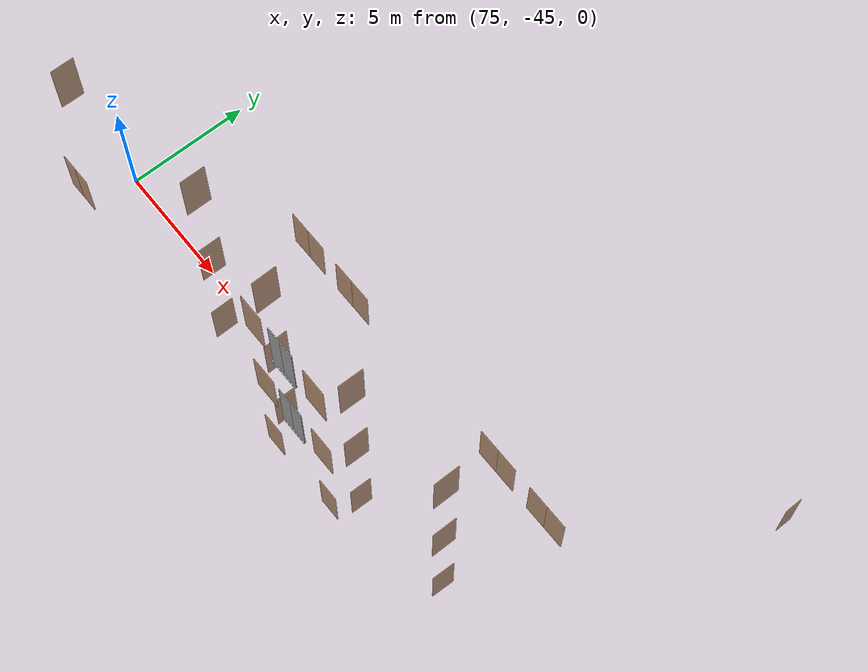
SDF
<sdf version="1.7">
 <world name="sim_world">
  <model name="p51">
   <pose>74.32173120796426 -46.93032058309386 0.0 0 0 0.003984648579057701</pose>
   <link name="right">
    <pose>0.36528096569168833 0 1.11 0 0 0</pose>
    <visual name="right_visual">
     <geometry><box><size>0.7205619313833767 0.03 2.2</size></box></geometry>
     <material>
      <ambient>0.5 0.25 0 0.6</ambient>
      <diffuse>0.5 0.25 0 0.6</diffuse>
      <pbr><metal><metalness>0.0</metalness></metal></pbr>
     </material>
    </visual>
    <collision name="right_collision">
     <geometry><box><size>0.7205619313833767 0.03 2.2</size></box></geometry>
     <surface><contact><collide_bitmask>0x02</collide_bitmask></contact></surface>
    </collision>
    <inertial>
     <mass>50.0</mass>
     <inertia><ixx>20.17041666666667</ixx><iyy>22.330039570662265</iyy><izz>2.167122903995592</izz></inertia>
    </inertial>
   </link>
   <joint name="right_joint" type="revolute">
    <parent>world</parent>
    <child>right</child>
    <axis><xyz>0 0 -1</xyz><limit><lower>0</lower><upper>1.57</upper></limit></axis>
    <pose>0.36528096569168833 0 0 0 0 0</pose>
   </joint>
   <link name="left">
    <pose>-0.36528096569168833 0 1.11 0 0 0</pose>
    <visual name="left_visual">
     <geometry><box><size>0.7205619313833767 0.03 2.2</size></box></geometry>
     <material>
      <ambient>0.5 0.25 0 0.6</ambient>
      <diffuse>0.5 0.25 0 0.6</diffuse>
      <pbr><metal><metalness>0.0</metalness></metal></pbr>
     </material>
    </visual>
    <collision name="left_collision">
     <geometry><box><size>0.7205619313833767 0.03 2.2</size></box></geometry>
     <surface><contact><collide_bitmask>0x02</collide_bitmask></contact></surface>
    </collision>
    <inertial>
     <mass>50.0</mass>
     <inertia><ixx>20.17041666666667</ixx><iyy>22.330039570662265</iyy><izz>2.167122903995592</izz></inertia>
    </inertial>
   </link>
   <joint name="left_joint" type="revolute">
    <parent>world</parent>
    <child>left</child>
    <axis><xyz>0 0 -1</xyz><limit><lower>-1.57</lower><upper>0</upper></limit></axis>
    <pose>-0.36528096569168833 0 0 0 0 0</pose>
   </joint>
   <plugin name="register_component" filename="libregister_component.so">
    <component name="Door">
     <v_max_door>0.5</v_max_door>
     <a_max_door>0.3</a_max_door>
     <a_nom_door>0.15</a_nom_door>
     <dx_min_door>0.01</dx_min_door>
     <f_max_door>500.0</f_max_door>
     <ros_interface>true</ros_interface>
     <door name="p51" type="DoubleSwingDoor" left_joint_name="left_joint" right_joint_name="right_joint"/>
    </component>
   </plugin>
  </model>
  <model name="p56">
   <pose>81.77791028413978 -41.72223045243107 0.0 0 0 0.0</pose>
   <link name="right">
    <pose>0.46025302953986724 0 1.11 0 0 0</pose>
    <visual name="right_visual">
     <geometry><box><size>0.9105060590797345 0.03 2.2</size></box></geometry>
     <material>
      <ambient>0.5 0.25 0 0.6</ambient>
      <diffuse>0.5 0.25 0 0.6</diffuse>
      <pbr><metal><metalness>0.0</metalness></metal></pbr>
     </material>
    </visual>
    <collision name="right_collision">
     <geometry><box><size>0.9105060590797345 0.03 2.2</size></box></geometry>
     <surface><contact><collide_bitmask>0x02</collide_bitmask></contact></surface>
    </collision>
    <inertial>
     <mass>50.0</mass>
     <inertia><ixx>20.17041666666667</ixx><iyy>23.620922015087125</iyy><izz>3.458005348420454</izz></inertia>
    </inertial>
   </link>
   <joint name="right_joint" type="revolute">
    <parent>world</parent>
    <child>right</child>
    <axis><xyz>0 0 -1</xyz><limit><lower>0</lower><upper>1.57</upper></limit></axis>
    <pose>0.46025302953986724 0 0 0 0 0</pose>
   </joint>
   <link name="left">
    <pose>-0.46025302953986724 0 1.11 0 0 0</pose>
    <visual name="left_visual">
     <geometry><box><size>0.9105060590797345 0.03 2.2</size></box></geometry>
     <material>
      <ambient>0.5 0.25 0 0.6</ambient>
      <diffuse>0.5 0.25 0 0.6</diffuse>
      <pbr><metal><metalness>0.0</metalness></metal></pbr>
     </material>
    </visual>
    <collision name="left_collision">
     <geometry><box><size>0.9105060590797345 0.03 2.2</size></box></geometry>
     <surface><contact><collide_bitmask>0x02</collide_bitmask></contact></surface>
    </collision>
    <inertial>
     <mass>50.0</mass>
     <inertia><ixx>20.17041666666667</ixx><iyy>23.620922015087125</iyy><izz>3.458005348420454</izz></inertia>
    </inertial>
   </link>
   <joint name="left_joint" type="revolute">
    <parent>world</parent>
    <child>left</child>
    <axis><xyz>0 0 -1</xyz><limit><lower>-1.57</lower><upper>0</upper></limit></axis>
    <pose>-0.46025302953986724 0 0 0 0 0</pose>
   </joint>
   <plugin name="register_component" filename="libregister_component.so">
    <component name="Door">
     <v_max_door>0.5</v_max_door>
     <a_max_door>0.3</a_max_door>
     <a_nom_door>0.15</a_nom_door>
     <dx_min_door>0.01</dx_min_door>
     <f_max_door>500.0</f_max_door>
     <ros_interface>true</ros_interface>
     <door name="p56" type="DoubleSwingDoor" left_joint_name="left_joint" right_joint_name="right_joint"/>
    </component>
   </plugin>
  </model>
  <model name="p57">
   <pose>84.3984993037244 -41.72223045243107 0.0 0 0 0.0</pose>
   <link name="right">
    <pose>0.4707749400017782 0 1.11 0 0 0</pose>
    <visual name="right_visual">
     <geometry><box><size>0.9315498800035564 0.03 2.2</size></box></geometry>
     <material>
      <ambient>0.5 0.25 0 0.6</ambient>
      <diffuse>0.5 0.25 0 0.6</diffuse>
      <pbr><metal><metalness>0.0</metalness></metal></pbr>
     </material>
    </visual>
    <collision name="right_collision">
     <geometry><box><size>0.9315498800035564 0.03 2.2</size></box></geometry>
     <surface><contact><collide_bitmask>0x02</collide_bitmask></contact></surface>
    </collision>
    <inertial>
     <mass>50.0</mass>
     <inertia><ixx>20.17041666666667</ixx><iyy>23.782438245561003</iyy><izz>3.619521578894335</izz></inertia>
    </inertial>
   </link>
   <joint name="right_joint" type="revolute">
    <parent>world</parent>
    <child>right</child>
    <axis><xyz>0 0 -1</xyz><limit><lower>0</lower><upper>1.57</upper></limit></axis>
    <pose>0.4707749400017782 0 0 0 0 0</pose>
   </joint>
   <link name="left">
    <pose>-0.4707749400017782 0 1.11 0 0 0</pose>
    <visual name="left_visual">
     <geometry><box><size>0.9315498800035564 0.03 2.2</size></box></geometry>
     <material>
      <ambient>0.5 0.25 0 0.6</ambient>
      <diffuse>0.5 0.25 0 0.6</diffuse>
      <pbr><metal><metalness>0.0</metalness></metal></pbr>
     </material>
    </visual>
    <collision name="left_collision">
     <geometry><box><size>0.9315498800035564 0.03 2.2</size></box></geometry>
     <surface><contact><collide_bitmask>0x02</collide_bitmask></contact></surface>
    </collision>
    <inertial>
     <mass>50.0</mass>
     <inertia><ixx>20.17041666666667</ixx><iyy>23.782438245561003</iyy><izz>3.619521578894335</izz></inertia>
    </inertial>
   </link>
   <joint name="left_joint" type="revolute">
    <parent>world</parent>
    <child>left</child>
    <axis><xyz>0 0 -1</xyz><limit><lower>-1.57</lower><upper>0</upper></limit></axis>
    <pose>-0.4707749400017782 0 0 0 0 0</pose>
   </joint>
   <plugin name="register_component" filename="libregister_component.so">
    <component name="Door">
     <v_max_door>0.5</v_max_door>
     <a_max_door>0.3</a_max_door>
     <a_nom_door>0.15</a_nom_door>
     <dx_min_door>0.01</dx_min_door>
     <f_max_door>500.0</f_max_door>
     <ros_interface>true</ros_interface>
     <door name="p57" type="DoubleSwingDoor" left_joint_name="left_joint" right_joint_name="right_joint"/>
    </component>
   </plugin>
  </model>
  <model name="p84">
   <pose>82.21224185950052 -45.95616055820571 0.0 0 0 1.5800664596565286</pose>
   <link name="right">
    <pose>0 0 1.11 0 0 0</pose>
    <visual name="right_visual">
     <geometry><box><size>0.9320792330779536 0.03 2.2</size></box></geometry>
     <material>
      <ambient>0.5 0.25 0 0.6</ambient>
      <diffuse>0.5 0.25 0 0.6</diffuse>
      <pbr><metal><metalness>0.0</metalness></metal></pbr>
     </material>
    </visual>
    <collision name="right_collision">
     <geometry><box><size>0.9320792330779536 0.03 2.2</size></box></geometry>
     <surface><contact><collide_bitmask>0x02</collide_bitmask></contact></surface>
    </collision>
    <inertial>
     <mass>50.0</mass>
     <inertia><ixx>20.17041666666667</ixx><iyy>23.786548736396615</iyy><izz>3.623632069729943</izz></inertia>
    </inertial>
   </link>
   <joint name="right_joint" type="revolute">
    <parent>world</parent>
    <child>right</child>
    <axis><xyz>0 0 -1</xyz><limit><lower>0</lower><upper>1.57</upper></limit></axis>
    <pose>0.4710396165389768 0 0 0 0 0</pose>
   </joint>
   <plugin name="register_component" filename="libregister_component.so">
    <component name="Door">
     <v_max_door>0.5</v_max_door>
     <a_max_door>0.3</a_max_door>
     <a_nom_door>0.15</a_nom_door>
     <dx_min_door>0.01</dx_min_door>
     <f_max_door>500.0</f_max_door>
     <ros_interface>true</ros_interface>
     <door name="p84" type="SwingDoor" left_joint_name="empty_joint" right_joint_name="right_joint"/>
    </component>
   </plugin>
  </model>
  <model name="p88">
   <pose>86.38937364818827 -46.28528413972923 0.0 0 0 1.5707963267948966</pose>
   <link name="right">
    <pose>0 0 1.11 0 0 0</pose>
    <visual name="right_visual">
     <geometry><box><size>0.8723960771532668 0.03 2.2</size></box></geometry>
     <material>
      <ambient>0.5 0.25 0 0.6</ambient>
      <diffuse>0.5 0.25 0 0.6</diffuse>
      <pbr><metal><metalness>0.0</metalness></metal></pbr>
     </material>
    </visual>
    <collision name="right_collision">
     <geometry><box><size>0.8723960771532668 0.03 2.2</size></box></geometry>
     <surface><contact><collide_bitmask>0x02</collide_bitmask></contact></surface>
    </collision>
    <inertial>
     <mass>50.0</mass>
     <inertia><ixx>20.17041666666667</ixx><iyy>23.33781214763504</iyy><izz>3.17489548096837</izz></inertia>
    </inertial>
   </link>
   <joint name="right_joint" type="revolute">
    <parent>world</parent>
    <child>right</child>
    <axis><xyz>0 0 -1</xyz><limit><lower>0</lower><upper>1.57</upper></limit></axis>
    <pose>0.4411980385766334 0 0 0 0 0</pose>
   </joint>
   <plugin name="register_component" filename="libregister_component.so">
    <component name="Door">
     <v_max_door>0.5</v_max_door>
     <a_max_door>0.3</a_max_door>
     <a_nom_door>0.15</a_nom_door>
     <dx_min_door>0.01</dx_min_door>
     <f_max_door>500.0</f_max_door>
     <ros_interface>true</ros_interface>
     <door name="p88" type="SwingDoor" left_joint_name="empty_joint" right_joint_name="right_joint"/>
    </component>
   </plugin>
  </model>
  <model name="p89">
   <pose>90.73502266599515 -46.259451571805315 0.0 0 0 1.5528749148952739</pose>
   <link name="right">
    <pose>0 0 1.11 0 0 0</pose>
    <visual name="right_visual">
     <geometry><box><size>0.8654479814166963 0.03 2.2</size></box></geometry>
     <material>
      <ambient>0.5 0.25 0 0.6</ambient>
      <diffuse>0.5 0.25 0 0.6</diffuse>
      <pbr><metal><metalness>0.0</metalness></metal></pbr>
     </material>
    </visual>
    <collision name="right_collision">
     <geometry><box><size>0.8654479814166963 0.03 2.2</size></box></geometry>
     <surface><contact><collide_bitmask>0x02</collide_bitmask></contact></surface>
    </collision>
    <inertial>
     <mass>50.0</mass>
     <inertia><ixx>20.17041666666667</ixx><iyy>23.287500868909316</iyy><izz>3.1245842022426435</izz></inertia>
    </inertial>
   </link>
   <joint name="right_joint" type="revolute">
    <parent>world</parent>
    <child>right</child>
    <axis><xyz>0 0 1</xyz><limit><lower>0</lower><upper>1.57</upper></limit></axis>
    <pose>0.43772399070834817 0 0 0 0 0</pose>
   </joint>
   <plugin name="register_component" filename="libregister_component.so">
    <component name="Door">
     <v_max_door>0.5</v_max_door>
     <a_max_door>0.3</a_max_door>
     <a_nom_door>0.15</a_nom_door>
     <dx_min_door>0.01</dx_min_door>
     <f_max_door>500.0</f_max_door>
     <ros_interface>true</ros_interface>
     <door name="p89" type="SwingDoor" left_joint_name="empty_joint" right_joint_name="right_joint"/>
    </component>
   </plugin>
  </model>
  <model name="p90">
   <pose>94.91517658736043 -45.93215015851385 0.0 0 0 1.5454165304402319</pose>
   <link name="right">
    <pose>0 0 1.11 0 0 0</pose>
    <visual name="right_visual">
     <geometry><box><size>0.9103135714260935 0.03 2.2</size></box></geometry>
     <material>
      <ambient>0.5 0.25 0 0.6</ambient>
      <diffuse>0.5 0.25 0 0.6</diffuse>
      <pbr><metal><metalness>0.0</metalness></metal></pbr>
     </material>
    </visual>
    <collision name="right_collision">
     <geometry><box><size>0.9103135714260935 0.03 2.2</size></box></geometry>
     <surface><contact><collide_bitmask>0x02</collide_bitmask></contact></surface>
    </collision>
    <inertial>
     <mass>50.0</mass>
     <inertia><ixx>20.17041666666667</ixx><iyy>23.61946165967721</iyy><izz>3.4565449930105396</izz></inertia>
    </inertial>
   </link>
   <joint name="right_joint" type="revolute">
    <parent>world</parent>
    <child>right</child>
    <axis><xyz>0 0 1</xyz><limit><lower>0</lower><upper>1.57</upper></limit></axis>
    <pose>0.46015678571304675 0 0 0 0 0</pose>
   </joint>
   <plugin name="register_component" filename="libregister_component.so">
    <component name="Door">
     <v_max_door>0.5</v_max_door>
     <a_max_door>0.3</a_max_door>
     <a_nom_door>0.15</a_nom_door>
     <dx_min_door>0.01</dx_min_door>
     <f_max_door>500.0</f_max_door>
     <ros_interface>true</ros_interface>
     <door name="p90" type="SwingDoor" left_joint_name="empty_joint" right_joint_name="right_joint"/>
    </component>
   </plugin>
  </model>
  <model name="p96">
   <pose>92.74594086101159 -41.70956416106193 0.0 0 0 0.0</pose>
   <link name="right">
    <pose>0.47248600041480415 0 1.11 0 0 0</pose>
    <visual name="right_visual">
     <geometry><box><size>0.9349720008296083 0.03 2.2</size></box></geometry>
     <material>
      <ambient>0.5 0.25 0 0.6</ambient>
      <diffuse>0.5 0.25 0 0.6</diffuse>
      <pbr><metal><metalness>0.0</metalness></metal></pbr>
     </material>
    </visual>
    <collision name="right_collision">
     <geometry><box><size>0.9349720008296083 0.03 2.2</size></box></geometry>
     <surface><contact><collide_bitmask>0x02</collide_bitmask></contact></surface>
    </collision>
    <inertial>
     <mass>50.0</mass>
     <inertia><ixx>20.17041666666667</ixx><iyy>23.80905267639718</iyy><izz>3.646136009730505</izz></inertia>
    </inertial>
   </link>
   <joint name="right_joint" type="revolute">
    <parent>world</parent>
    <child>right</child>
    <axis><xyz>0 0 -1</xyz><limit><lower>0</lower><upper>1.57</upper></limit></axis>
    <pose>0.47248600041480415 0 0 0 0 0</pose>
   </joint>
   <link name="left">
    <pose>-0.47248600041480415 0 1.11 0 0 0</pose>
    <visual name="left_visual">
     <geometry><box><size>0.9349720008296083 0.03 2.2</size></box></geometry>
     <material>
      <ambient>0.5 0.25 0 0.6</ambient>
      <diffuse>0.5 0.25 0 0.6</diffuse>
      <pbr><metal><metalness>0.0</metalness></metal></pbr>
     </material>
    </visual>
    <collision name="left_collision">
     <geometry><box><size>0.9349720008296083 0.03 2.2</size></box></geometry>
     <surface><contact><collide_bitmask>0x02</collide_bitmask></contact></surface>
    </collision>
    <inertial>
     <mass>50.0</mass>
     <inertia><ixx>20.17041666666667</ixx><iyy>23.80905267639718</iyy><izz>3.646136009730505</izz></inertia>
    </inertial>
   </link>
   <joint name="left_joint" type="revolute">
    <parent>world</parent>
    <child>left</child>
    <axis><xyz>0 0 -1</xyz><limit><lower>-1.57</lower><upper>0</upper></limit></axis>
    <pose>-0.47248600041480415 0 0 0 0 0</pose>
   </joint>
   <plugin name="register_component" filename="libregister_component.so">
    <component name="Door">
     <v_max_door>0.5</v_max_door>
     <a_max_door>0.3</a_max_door>
     <a_nom_door>0.15</a_nom_door>
     <dx_min_door>0.01</dx_min_door>
     <f_max_door>500.0</f_max_door>
     <ros_interface>true</ros_interface>
     <door name="p96" type="DoubleSwingDoor" left_joint_name="left_joint" right_joint_name="right_joint"/>
    </component>
   </plugin>
  </model>
  <model name="p97">
   <pose>95.39737341115824 -41.70956416106193 0.0 0 0 0.0</pose>
   <link name="right">
    <pose>0.4747525999229687 0 1.11 0 0 0</pose>
    <visual name="right_visual">
     <geometry><box><size>0.9395051998459374 0.03 2.2</size></box></geometry>
     <material>
      <ambient>0.5 0.25 0 0.6</ambient>
      <diffuse>0.5 0.25 0 0.6</diffuse>
      <pbr><metal><metalness>0.0</metalness></metal></pbr>
     </material>
    </visual>
    <collision name="right_collision">
     <geometry><box><size>0.9395051998459374 0.03 2.2</size></box></geometry>
     <surface><contact><collide_bitmask>0x02</collide_bitmask></contact></surface>
    </collision>
    <inertial>
     <mass>50.0</mass>
     <inertia><ixx>20.17041666666667</ixx><iyy>23.844458418906484</iyy><izz>3.6815417522398115</izz></inertia>
    </inertial>
   </link>
   <joint name="right_joint" type="revolute">
    <parent>world</parent>
    <child>right</child>
    <axis><xyz>0 0 -1</xyz><limit><lower>0</lower><upper>1.57</upper></limit></axis>
    <pose>0.4747525999229687 0 0 0 0 0</pose>
   </joint>
   <link name="left">
    <pose>-0.4747525999229687 0 1.11 0 0 0</pose>
    <visual name="left_visual">
     <geometry><box><size>0.9395051998459374 0.03 2.2</size></box></geometry>
     <material>
      <ambient>0.5 0.25 0 0.6</ambient>
      <diffuse>0.5 0.25 0 0.6</diffuse>
      <pbr><metal><metalness>0.0</metalness></metal></pbr>
     </material>
    </visual>
    <collision name="left_collision">
     <geometry><box><size>0.9395051998459374 0.03 2.2</size></box></geometry>
     <surface><contact><collide_bitmask>0x02</collide_bitmask></contact></surface>
    </collision>
    <inertial>
     <mass>50.0</mass>
     <inertia><ixx>20.17041666666667</ixx><iyy>23.844458418906484</iyy><izz>3.6815417522398115</izz></inertia>
    </inertial>
   </link>
   <joint name="left_joint" type="revolute">
    <parent>world</parent>
    <child>left</child>
    <axis><xyz>0 0 -1</xyz><limit><lower>-1.57</lower><upper>0</upper></limit></axis>
    <pose>-0.4747525999229687 0 0 0 0 0</pose>
   </joint>
   <plugin name="register_component" filename="libregister_component.so">
    <component name="Door">
     <v_max_door>0.5</v_max_door>
     <a_max_door>0.3</a_max_door>
     <a_nom_door>0.15</a_nom_door>
     <dx_min_door>0.01</dx_min_door>
     <f_max_door>500.0</f_max_door>
     <ros_interface>true</ros_interface>
     <door name="p97" type="DoubleSwingDoor" left_joint_name="left_joint" right_joint_name="right_joint"/>
    </component>
   </plugin>
  </model>
  <model name="p134">
   <pose>100.66537287784072 -34.99961852982136 0.0 0 0 1.5758287047137844</pose>
   <link name="right">
    <pose>0 0 1.11 0 0 0</pose>
    <visual name="right_visual">
     <geometry><box><size>0.6788549789555727 0.03 2.2</size></box></geometry>
     <material>
      <ambient>0.5 0.25 0 0.6</ambient>
      <diffuse>0.5 0.25 0 0.6</diffuse>
      <pbr><metal><metalness>0.0</metalness></metal></pbr>
     </material>
    </visual>
    <collision name="right_collision">
     <geometry><box><size>0.6788549789555727 0.03 2.2</size></box></geometry>
     <surface><contact><collide_bitmask>0x02</collide_bitmask></contact></surface>
    </collision>
    <inertial>
     <mass>50.0</mass>
     <inertia><ixx>20.17041666666667</ixx><iyy>22.086850343553216</iyy><izz>1.923933676886546</izz></inertia>
    </inertial>
   </link>
   <joint name="right_joint" type="revolute">
    <parent>world</parent>
    <child>right</child>
    <axis><xyz>0 0 -1</xyz><limit><lower>0</lower><upper>1.57</upper></limit></axis>
    <pose>0.34442748947778634 0 0 0 0 0</pose>
   </joint>
   <plugin name="register_component" filename="libregister_component.so">
    <component name="Door">
     <v_max_door>0.5</v_max_door>
     <a_max_door>0.3</a_max_door>
     <a_nom_door>0.15</a_nom_door>
     <dx_min_door>0.01</dx_min_door>
     <f_max_door>500.0</f_max_door>
     <ros_interface>true</ros_interface>
     <door name="p134" type="SwingDoor" left_joint_name="empty_joint" right_joint_name="right_joint"/>
    </component>
   </plugin>
  </model>
  <model name="door1">
   <pose>87.02282154602833 -47.255966489881814 0.0 0 0 -3.135361404890711</pose>
   <link name="right">
    <pose>0 0 1.11 0 0 0</pose>
    <visual name="right_visual">
     <geometry><box><size>0.9421680514886853 0.03 2.2</size></box></geometry>
     <material>
      <ambient>0.5 0.25 0 0.6</ambient>
      <diffuse>0.5 0.25 0 0.6</diffuse>
      <pbr><metal><metalness>0.0</metalness></metal></pbr>
     </material>
    </visual>
    <collision name="right_collision">
     <geometry><box><size>0.9421680514886853 0.03 2.2</size></box></geometry>
     <surface><contact><collide_bitmask>0x02</collide_bitmask></contact></surface>
    </collision>
    <inertial>
     <mass>50.0</mass>
     <inertia><ixx>20.17041666666667</ixx><iyy>23.865335988524947</iyy><izz>3.7024193218582755</izz></inertia>
    </inertial>
   </link>
   <joint name="right_joint" type="revolute">
    <parent>world</parent>
    <child>right</child>
    <axis><xyz>0 0 -1</xyz><limit><lower>0</lower><upper>1.57</upper></limit></axis>
    <pose>0.47608402574434266 0 0 0 0 0</pose>
   </joint>
   <plugin name="register_component" filename="libregister_component.so">
    <component name="Door">
     <v_max_door>0.5</v_max_door>
     <a_max_door>0.3</a_max_door>
     <a_nom_door>0.15</a_nom_door>
     <dx_min_door>0.01</dx_min_door>
     <f_max_door>500.0</f_max_door>
     <ros_interface>true</ros_interface>
     <door name="door1" type="SwingDoor" left_joint_name="empty_joint" right_joint_name="right_joint"/>
    </component>
   </plugin>
  </model>
  <model name="door2">
   <pose>90.14611789280323 -47.2474667417262 0.0 0 0 -0.002219270268049389</pose>
   <link name="right">
    <pose>0 0 1.11 0 0 0</pose>
    <visual name="right_visual">
     <geometry><box><size>0.9111971960788078 0.03 2.2</size></box></geometry>
     <material>
      <ambient>0.5 0.25 0 0.6</ambient>
      <diffuse>0.5 0.25 0 0.6</diffuse>
      <pbr><metal><metalness>0.0</metalness></metal></pbr>
     </material>
    </visual>
    <collision name="right_collision">
     <geometry><box><size>0.9111971960788078 0.03 2.2</size></box></geometry>
     <surface><contact><collide_bitmask>0x02</collide_bitmask></contact></surface>
    </collision>
    <inertial>
     <mass>50.0</mass>
     <inertia><ixx>20.17041666666667</ixx><iyy>23.62616804225784</iyy><izz>3.4632513755911725</izz></inertia>
    </inertial>
   </link>
   <joint name="right_joint" type="revolute">
    <parent>world</parent>
    <child>right</child>
    <axis><xyz>0 0 1</xyz><limit><lower>0</lower><upper>1.57</upper></limit></axis>
    <pose>0.4605985980394039 0 0 0 0 0</pose>
   </joint>
   <plugin name="register_component" filename="libregister_component.so">
    <component name="Door">
     <v_max_door>0.5</v_max_door>
     <a_max_door>0.3</a_max_door>
     <a_nom_door>0.15</a_nom_door>
     <dx_min_door>0.01</dx_min_door>
     <f_max_door>500.0</f_max_door>
     <ros_interface>true</ros_interface>
     <door name="door2" type="SwingDoor" left_joint_name="empty_joint" right_joint_name="right_joint"/>
    </component>
   </plugin>
  </model>
  <model name="puerta12">
   <pose>82.21872198714777 -45.93574734332783 5.0 0 0 1.5692167312490883</pose>
   <link name="right">
    <pose>0 0 1.11 0 0 0</pose>
    <visual name="right_visual">
     <geometry><box><size>0.9391861105429343 0.03 2.2</size></box></geometry>
     <material>
      <ambient>0.5 0.25 0 0.6</ambient>
      <diffuse>0.5 0.25 0 0.6</diffuse>
      <pbr><metal><metalness>0.0</metalness></metal></pbr>
     </material>
    </visual>
    <collision name="right_collision">
     <geometry><box><size>0.9391861105429343 0.03 2.2</size></box></geometry>
     <surface><contact><collide_bitmask>0x02</collide_bitmask></contact></surface>
    </collision>
    <inertial>
     <mass>50.0</mass>
     <inertia><ixx>20.17041666666667</ixx><iyy>23.841960625986527</iyy><izz>3.679043959319854</izz></inertia>
    </inertial>
   </link>
   <joint name="right_joint" type="revolute">
    <parent>world</parent>
    <child>right</child>
    <axis><xyz>0 0 -1</xyz><limit><lower>0</lower><upper>1.57</upper></limit></axis>
    <pose>0.47459305527146717 0 0 0 0 0</pose>
   </joint>
   <plugin name="register_component" filename="libregister_component.so">
    <component name="Door">
     <v_max_door>0.5</v_max_door>
     <a_max_door>0.3</a_max_door>
     <a_nom_door>0.15</a_nom_door>
     <dx_min_door>0.01</dx_min_door>
     <f_max_door>500.0</f_max_door>
     <ros_interface>true</ros_interface>
     <door name="puerta12" type="SwingDoor" left_joint_name="empty_joint" right_joint_name="right_joint"/>
    </component>
   </plugin>
  </model>
  <model name="puerta16">
   <pose>86.38997093504412 -46.263342028713105 5.0 0 0 1.590242900649069</pose>
   <link name="right">
    <pose>0 0 1.11 0 0 0</pose>
    <visual name="right_visual">
     <geometry><box><size>0.9415397783270939 0.03 2.2</size></box></geometry>
     <material>
      <ambient>0.5 0.25 0 0.6</ambient>
      <diffuse>0.5 0.25 0 0.6</diffuse>
      <pbr><metal><metalness>0.0</metalness></metal></pbr>
     </material>
    </visual>
    <collision name="right_collision">
     <geometry><box><size>0.9415397783270939 0.03 2.2</size></box></geometry>
     <surface><contact><collide_bitmask>0x02</collide_bitmask></contact></surface>
    </collision>
    <inertial>
     <mass>50.0</mass>
     <inertia><ixx>20.17041666666667</ixx><iyy>23.860404809050976</iyy><izz>3.6974881423843047</izz></inertia>
    </inertial>
   </link>
   <joint name="right_joint" type="revolute">
    <parent>world</parent>
    <child>right</child>
    <axis><xyz>0 0 -1</xyz><limit><lower>0</lower><upper>1.57</upper></limit></axis>
    <pose>0.47576988916354696 0 0 0 0 0</pose>
   </joint>
   <plugin name="register_component" filename="libregister_component.so">
    <component name="Door">
     <v_max_door>0.5</v_max_door>
     <a_max_door>0.3</a_max_door>
     <a_nom_door>0.15</a_nom_door>
     <dx_min_door>0.01</dx_min_door>
     <f_max_door>500.0</f_max_door>
     <ros_interface>true</ros_interface>
     <door name="puerta16" type="SwingDoor" left_joint_name="empty_joint" right_joint_name="right_joint"/>
    </component>
   </plugin>
  </model>
  <model name="puerta58">
   <pose>90.72171994269249 -46.26766840976967 5.0 0 0 1.5565709852327387</pose>
   <link name="right">
    <pose>0 0 1.11 0 0 0</pose>
    <visual name="right_visual">
     <geometry><box><size>0.9390827698172256 0.03 2.2</size></box></geometry>
     <material>
      <ambient>0.5 0.25 0 0.6</ambient>
      <diffuse>0.5 0.25 0 0.6</diffuse>
      <pbr><metal><metalness>0.0</metalness></metal></pbr>
     </material>
    </visual>
    <collision name="right_collision">
     <geometry><box><size>0.9390827698172256 0.03 2.2</size></box></geometry>
     <surface><contact><collide_bitmask>0x02</collide_bitmask></contact></surface>
    </collision>
    <inertial>
     <mass>50.0</mass>
     <inertia><ixx>20.17041666666667</ixx><iyy>23.841151869031638</iyy><izz>3.6782352023649683</izz></inertia>
    </inertial>
   </link>
   <joint name="right_joint" type="revolute">
    <parent>world</parent>
    <child>right</child>
    <axis><xyz>0 0 1</xyz><limit><lower>0</lower><upper>1.57</upper></limit></axis>
    <pose>0.4745413849086128 0 0 0 0 0</pose>
   </joint>
   <plugin name="register_component" filename="libregister_component.so">
    <component name="Door">
     <v_max_door>0.5</v_max_door>
     <a_max_door>0.3</a_max_door>
     <a_nom_door>0.15</a_nom_door>
     <dx_min_door>0.01</dx_min_door>
     <f_max_door>500.0</f_max_door>
     <ros_interface>true</ros_interface>
     <door name="puerta58" type="SwingDoor" left_joint_name="empty_joint" right_joint_name="right_joint"/>
    </component>
   </plugin>
  </model>
  <model name="puerta59">
   <pose>94.90597278616218 -45.958730188511424 5.0 0 0 1.56815506446211</pose>
   <link name="right">
    <pose>0 0 1.11 0 0 0</pose>
    <visual name="right_visual">
     <geometry><box><size>0.9523675508479919 0.03 2.2</size></box></geometry>
     <material>
      <ambient>0.5 0.25 0 0.6</ambient>
      <diffuse>0.5 0.25 0 0.6</diffuse>
      <pbr><metal><metalness>0.0</metalness></metal></pbr>
     </material>
    </visual>
    <collision name="right_collision">
     <geometry><box><size>0.9523675508479919 0.03 2.2</size></box></geometry>
     <surface><contact><collide_bitmask>0x02</collide_bitmask></contact></surface>
    </collision>
    <inertial>
     <mass>50.0</mass>
     <inertia><ixx>20.17041666666667</ixx><iyy>23.945849799617516</iyy><izz>3.7829331329508435</izz></inertia>
    </inertial>
   </link>
   <joint name="right_joint" type="revolute">
    <parent>world</parent>
    <child>right</child>
    <axis><xyz>0 0 1</xyz><limit><lower>0</lower><upper>1.57</upper></limit></axis>
    <pose>0.48118377542399593 0 0 0 0 0</pose>
   </joint>
   <plugin name="register_component" filename="libregister_component.so">
    <component name="Door">
     <v_max_door>0.5</v_max_door>
     <a_max_door>0.3</a_max_door>
     <a_nom_door>0.15</a_nom_door>
     <dx_min_door>0.01</dx_min_door>
     <f_max_door>500.0</f_max_door>
     <ros_interface>true</ros_interface>
     <door name="puerta59" type="SwingDoor" left_joint_name="empty_joint" right_joint_name="right_joint"/>
    </component>
   </plugin>
  </model>
  <model name="puerta77">
   <pose>87.05248618054199 -47.23282738127189 5.0 0 0 -3.137733583077164</pose>
   <link name="right">
    <pose>0 0 1.11 0 0 0</pose>
    <visual name="right_visual">
     <geometry><box><size>1.087429405224159 0.03 2.2</size></box></geometry>
     <material>
      <ambient>0.5 0.25 0 0.6</ambient>
      <diffuse>0.5 0.25 0 0.6</diffuse>
      <pbr><metal><metalness>0.0</metalness></metal></pbr>
     </material>
    </visual>
    <collision name="right_collision">
     <geometry><box><size>1.087429405224159 0.03 2.2</size></box></geometry>
     <surface><contact><collide_bitmask>0x02</collide_bitmask></contact></surface>
    </collision>
    <inertial>
     <mass>50.0</mass>
     <inertia><ixx>20.17041666666667</ixx><iyy>25.093761297275705</iyy><izz>4.930844630609035</izz></inertia>
    </inertial>
   </link>
   <joint name="right_joint" type="revolute">
    <parent>world</parent>
    <child>right</child>
    <axis><xyz>0 0 -1</xyz><limit><lower>0</lower><upper>1.57</upper></limit></axis>
    <pose>0.5487147026120796 0 0 0 0 0</pose>
   </joint>
   <plugin name="register_component" filename="libregister_component.so">
    <component name="Door">
     <v_max_door>0.5</v_max_door>
     <a_max_door>0.3</a_max_door>
     <a_nom_door>0.15</a_nom_door>
     <dx_min_door>0.01</dx_min_door>
     <f_max_door>500.0</f_max_door>
     <ros_interface>true</ros_interface>
     <door name="puerta77" type="SwingDoor" left_joint_name="empty_joint" right_joint_name="right_joint"/>
    </component>
   </plugin>
  </model>
  <model name="puerta78">
   <pose>90.1322083891242 -47.23438954188897 5.0 0 0 0.00015305860082299492</pose>
   <link name="right">
    <pose>0 0 1.11 0 0 0</pose>
    <visual name="right_visual">
     <geometry><box><size>1.016725844981074 0.03 2.2</size></box></geometry>
     <material>
      <ambient>0.5 0.25 0 0.6</ambient>
      <diffuse>0.5 0.25 0 0.6</diffuse>
      <pbr><metal><metalness>0.0</metalness></metal></pbr>
     </material>
    </visual>
    <collision name="right_collision">
     <geometry><box><size>1.016725844981074 0.03 2.2</size></box></geometry>
     <surface><contact><collide_bitmask>0x02</collide_bitmask></contact></surface>
    </collision>
    <inertial>
     <mass>50.0</mass>
     <inertia><ixx>20.17041666666667</ixx><iyy>24.473881016052</iyy><izz>4.31096434938533</izz></inertia>
    </inertial>
   </link>
   <joint name="right_joint" type="revolute">
    <parent>world</parent>
    <child>right</child>
    <axis><xyz>0 0 1</xyz><limit><lower>0</lower><upper>1.57</upper></limit></axis>
    <pose>0.513362922490537 0 0 0 0 0</pose>
   </joint>
   <plugin name="register_component" filename="libregister_component.so">
    <component name="Door">
     <v_max_door>0.5</v_max_door>
     <a_max_door>0.3</a_max_door>
     <a_nom_door>0.15</a_nom_door>
     <dx_min_door>0.01</dx_min_door>
     <f_max_door>500.0</f_max_door>
     <ros_interface>true</ros_interface>
     <door name="puerta78" type="SwingDoor" left_joint_name="empty_joint" right_joint_name="right_joint"/>
    </component>
   </plugin>
  </model>
  <model name="puerta103">
   <pose>82.21919756413095 -45.93582382147031 10.0 0 0 1.569218441725961</pose>
   <link name="right">
    <pose>0 0 1.11 0 0 0</pose>
    <visual name="right_visual">
     <geometry><box><size>0.9391972042563247 0.03 2.2</size></box></geometry>
     <material>
      <ambient>0.5 0.25 0 0.6</ambient>
      <diffuse>0.5 0.25 0 0.6</diffuse>
      <pbr><metal><metalness>0.0</metalness></metal></pbr>
     </material>
    </visual>
    <collision name="right_collision">
     <geometry><box><size>0.9391972042563247 0.03 2.2</size></box></geometry>
     <surface><contact><collide_bitmask>0x02</collide_bitmask></contact></surface>
    </collision>
    <inertial>
     <mass>50.0</mass>
     <inertia><ixx>20.17041666666667</ixx><iyy>23.842047452012075</iyy><izz>3.6791307853454023</izz></inertia>
    </inertial>
   </link>
   <joint name="right_joint" type="revolute">
    <parent>world</parent>
    <child>right</child>
    <axis><xyz>0 0 -1</xyz><limit><lower>0</lower><upper>1.57</upper></limit></axis>
    <pose>0.47459860212816235 0 0 0 0 0</pose>
   </joint>
   <plugin name="register_component" filename="libregister_component.so">
    <component name="Door">
     <v_max_door>0.5</v_max_door>
     <a_max_door>0.3</a_max_door>
     <a_nom_door>0.15</a_nom_door>
     <dx_min_door>0.01</dx_min_door>
     <f_max_door>500.0</f_max_door>
     <ros_interface>true</ros_interface>
     <door name="puerta103" type="SwingDoor" left_joint_name="empty_joint" right_joint_name="right_joint"/>
    </component>
   </plugin>
  </model>
  <model name="puerta107">
   <pose>86.39049582428564 -46.26341520074446 10.0 0 0 1.5902446111259747</pose>
   <link name="right">
    <pose>0 0 1.11 0 0 0</pose>
    <visual name="right_visual">
     <geometry><box><size>0.9415508995492196 0.03 2.2</size></box></geometry>
     <material>
      <ambient>0.5 0.25 0 0.6</ambient>
      <diffuse>0.5 0.25 0 0.6</diffuse>
      <pbr><metal><metalness>0.0</metalness></metal></pbr>
     </material>
    </visual>
    <collision name="right_collision">
     <geometry><box><size>0.9415508995492196 0.03 2.2</size></box></geometry>
     <surface><contact><collide_bitmask>0x02</collide_bitmask></contact></surface>
    </collision>
    <inertial>
     <mass>50.0</mass>
     <inertia><ixx>20.17041666666667</ixx><iyy>23.86049206850811</iyy><izz>3.697575401841436</izz></inertia>
    </inertial>
   </link>
   <joint name="right_joint" type="revolute">
    <parent>world</parent>
    <child>right</child>
    <axis><xyz>0 0 -1</xyz><limit><lower>0</lower><upper>1.57</upper></limit></axis>
    <pose>0.4757754497746098 0 0 0 0 0</pose>
   </joint>
   <plugin name="register_component" filename="libregister_component.so">
    <component name="Door">
     <v_max_door>0.5</v_max_door>
     <a_max_door>0.3</a_max_door>
     <a_nom_door>0.15</a_nom_door>
     <dx_min_door>0.01</dx_min_door>
     <f_max_door>500.0</f_max_door>
     <ros_interface>true</ros_interface>
     <door name="puerta107" type="SwingDoor" left_joint_name="empty_joint" right_joint_name="right_joint"/>
    </component>
   </plugin>
  </model>
  <model name="puerta136">
   <pose>90.72229546710416 -46.267734222922925 10.0 0 0 1.5565726957096175</pose>
   <link name="right">
    <pose>0 0 1.11 0 0 0</pose>
    <visual name="right_visual">
     <geometry><box><size>0.9390938623228262 0.03 2.2</size></box></geometry>
     <material>
      <ambient>0.5 0.25 0 0.6</ambient>
      <diffuse>0.5 0.25 0 0.6</diffuse>
      <pbr><metal><metalness>0.0</metalness></metal></pbr>
     </material>
    </visual>
    <collision name="right_collision">
     <geometry><box><size>0.9390938623228262 0.03 2.2</size></box></geometry>
     <surface><contact><collide_bitmask>0x02</collide_bitmask></contact></surface>
    </collision>
    <inertial>
     <mass>50.0</mass>
     <inertia><ixx>20.17041666666667</ixx><iyy>23.841238676051685</iyy><izz>3.6783220093850137</izz></inertia>
    </inertial>
   </link>
   <joint name="right_joint" type="revolute">
    <parent>world</parent>
    <child>right</child>
    <axis><xyz>0 0 1</xyz><limit><lower>0</lower><upper>1.57</upper></limit></axis>
    <pose>0.4745469311614131 0 0 0 0 0</pose>
   </joint>
   <plugin name="register_component" filename="libregister_component.so">
    <component name="Door">
     <v_max_door>0.5</v_max_door>
     <a_max_door>0.3</a_max_door>
     <a_nom_door>0.15</a_nom_door>
     <dx_min_door>0.01</dx_min_door>
     <f_max_door>500.0</f_max_door>
     <ros_interface>true</ros_interface>
     <door name="puerta136" type="SwingDoor" left_joint_name="empty_joint" right_joint_name="right_joint"/>
    </component>
   </plugin>
  </model>
  <model name="puerta137">
   <pose>94.90659668602905 -45.958785233765475 10.0 0 0 1.5681567749389735</pose>
   <link name="right">
    <pose>0 0 1.11 0 0 0</pose>
    <visual name="right_visual">
     <geometry><box><size>0.9523787986208715 0.03 2.2</size></box></geometry>
     <material>
      <ambient>0.5 0.25 0 0.6</ambient>
      <diffuse>0.5 0.25 0 0.6</diffuse>
      <pbr><metal><metalness>0.0</metalness></metal></pbr>
     </material>
    </visual>
    <collision name="right_collision">
     <geometry><box><size>0.9523787986208715 0.03 2.2</size></box></geometry>
     <surface><contact><collide_bitmask>0x02</collide_bitmask></contact></surface>
    </collision>
    <inertial>
     <mass>50.0</mass>
     <inertia><ixx>20.17041666666667</ixx><iyy>23.945939066927235</iyy><izz>3.783022400260561</izz></inertia>
    </inertial>
   </link>
   <joint name="right_joint" type="revolute">
    <parent>world</parent>
    <child>right</child>
    <axis><xyz>0 0 1</xyz><limit><lower>0</lower><upper>1.57</upper></limit></axis>
    <pose>0.48118939931043575 0 0 0 0 0</pose>
   </joint>
   <plugin name="register_component" filename="libregister_component.so">
    <component name="Door">
     <v_max_door>0.5</v_max_door>
     <a_max_door>0.3</a_max_door>
     <a_nom_door>0.15</a_nom_door>
     <dx_min_door>0.01</dx_min_door>
     <f_max_door>500.0</f_max_door>
     <ros_interface>true</ros_interface>
     <door name="puerta137" type="SwingDoor" left_joint_name="empty_joint" right_joint_name="right_joint"/>
    </component>
   </plugin>
  </model>
  <model name="puerta151">
   <pose>87.0042819647213 -47.23495185660896 10.0 0 0 -3.141437884512086</pose>
   <link name="right">
    <pose>0 0 1.11 0 0 0</pose>
    <visual name="right_visual">
     <geometry><box><size>0.9899570513390596 0.03 2.2</size></box></geometry>
     <material>
      <ambient>0.5 0.25 0 0.6</ambient>
      <diffuse>0.5 0.25 0 0.6</diffuse>
      <pbr><metal><metalness>0.0</metalness></metal></pbr>
     </material>
    </visual>
    <collision name="right_collision">
     <geometry><box><size>0.9899570513390596 0.03 2.2</size></box></geometry>
     <surface><contact><collide_bitmask>0x02</collide_bitmask></contact></surface>
    </collision>
    <inertial>
     <mass>50.0</mass>
     <inertia><ixx>20.17041666666667</ixx><iyy>24.250062347899693</iyy><izz>4.087145681233023</izz></inertia>
    </inertial>
   </link>
   <joint name="right_joint" type="revolute">
    <parent>world</parent>
    <child>right</child>
    <axis><xyz>0 0 -1</xyz><limit><lower>0</lower><upper>1.57</upper></limit></axis>
    <pose>0.4999785256695298 0 0 0 0 0</pose>
   </joint>
   <plugin name="register_component" filename="libregister_component.so">
    <component name="Door">
     <v_max_door>0.5</v_max_door>
     <a_max_door>0.3</a_max_door>
     <a_nom_door>0.15</a_nom_door>
     <dx_min_door>0.01</dx_min_door>
     <f_max_door>500.0</f_max_door>
     <ros_interface>true</ros_interface>
     <door name="puerta151" type="SwingDoor" left_joint_name="empty_joint" right_joint_name="right_joint"/>
    </component>
   </plugin>
  </model>
  <model name="puerta152">
   <pose>90.13277867713137 -47.234467662054314 10.0 0 0 0.00015476907770185208</pose>
   <link name="right">
    <pose>0 0 1.11 0 0 0</pose>
    <visual name="right_visual">
     <geometry><box><size>1.016737844948372 0.03 2.2</size></box></geometry>
     <material>
      <ambient>0.5 0.25 0 0.6</ambient>
      <diffuse>0.5 0.25 0 0.6</diffuse>
      <pbr><metal><metalness>0.0</metalness></metal></pbr>
     </material>
    </visual>
    <collision name="right_collision">
     <geometry><box><size>1.016737844948372 0.03 2.2</size></box></geometry>
     <surface><contact><collide_bitmask>0x02</collide_bitmask></contact></surface>
    </collision>
    <inertial>
     <mass>50.0</mass>
     <inertia><ixx>20.17041666666667</ixx><iyy>24.473982688959417</iyy><izz>4.311066022292748</izz></inertia>
    </inertial>
   </link>
   <joint name="right_joint" type="revolute">
    <parent>world</parent>
    <child>right</child>
    <axis><xyz>0 0 1</xyz><limit><lower>0</lower><upper>1.57</upper></limit></axis>
    <pose>0.513368922474186 0 0 0 0 0</pose>
   </joint>
   <plugin name="register_component" filename="libregister_component.so">
    <component name="Door">
     <v_max_door>0.5</v_max_door>
     <a_max_door>0.3</a_max_door>
     <a_nom_door>0.15</a_nom_door>
     <dx_min_door>0.01</dx_min_door>
     <f_max_door>500.0</f_max_door>
     <ros_interface>true</ros_interface>
     <door name="puerta152" type="SwingDoor" left_joint_name="empty_joint" right_joint_name="right_joint"/>
    </component>
   </plugin>
  </model>
  <model name="puerta206">
   <pose>76.3849954434392 -46.865298021361006 10.0 0 0 1.5709510958725987</pose>
   <link name="right">
    <pose>0 0 1.11 0 0 0</pose>
    <visual name="right_visual">
     <geometry><box><size>0.8714992671584569 0.03 2.2</size></box></geometry>
     <material>
      <ambient>0.5 0.25 0 0.6</ambient>
      <diffuse>0.5 0.25 0 0.6</diffuse>
      <pbr><metal><metalness>0.0</metalness></metal></pbr>
     </material>
    </visual>
    <collision name="right_collision">
     <geometry><box><size>0.8714992671584569 0.03 2.2</size></box></geometry>
     <surface><contact><collide_bitmask>0x02</collide_bitmask></contact></surface>
    </collision>
    <inertial>
     <mass>50.0</mass>
     <inertia><ixx>20.17041666666667</ixx><iyy>23.3312957194072</iyy><izz>3.1683790527405313</izz></inertia>
    </inertial>
   </link>
   <joint name="right_joint" type="revolute">
    <parent>world</parent>
    <child>right</child>
    <axis><xyz>0 0 1</xyz><limit><lower>0</lower><upper>1.57</upper></limit></axis>
    <pose>0.4407496335792285 0 0 0 0 0</pose>
   </joint>
   <plugin name="register_component" filename="libregister_component.so">
    <component name="Door">
     <v_max_door>0.5</v_max_door>
     <a_max_door>0.3</a_max_door>
     <a_nom_door>0.15</a_nom_door>
     <dx_min_door>0.01</dx_min_door>
     <f_max_door>500.0</f_max_door>
     <ros_interface>true</ros_interface>
     <door name="puerta206" type="SwingDoor" left_joint_name="empty_joint" right_joint_name="right_joint"/>
    </component>
   </plugin>
  </model>
  <model name="ShaftDoor_right_common_lift_L1_right_common_lift_door">
   <pose>88.57688854835307 -47.28293292128757 5.0 0 0 0.0</pose>
   <link name="right_door">
    <pose>0.3 0 1.25 0 0 0</pose>
    <visual name="right_door_visual">
     <geometry><box><size>0.6 0.03 2.5</size></box></geometry>
     <material>
      <ambient>0.5 0.5 0.5 1</ambient>
      <diffuse>0.7 0.7 0.7 1</diffuse>
      <specular>0.6 0.6 0.6 1</specular>
      <emissive>0.1 0.1 0.1 1</emissive>
     </material>
    </visual>
    <collision name="right_door_collision">
     <geometry><box><size>0.6 0.03 2.5</size></box></geometry>
     <surface><contact><collide_bitmask>0x02</collide_bitmask></contact></surface>
    </collision>
   </link>
   <link name="left_door">
    <pose>-0.3 0 1.25 0 0 0</pose>
    <visual name="left_door_visual">
     <geometry><box><size>0.6 0.03 2.5</size></box></geometry>
     <material>
      <ambient>0.5 0.5 0.5 1</ambient>
      <diffuse>0.7 0.7 0.7 1</diffuse>
      <specular>0.6 0.6 0.6 1</specular>
      <emissive>0.1 0.1 0.1 1</emissive>
     </material>
    </visual>
    <collision name="left_door_collision">
     <geometry><box><size>0.6 0.03 2.5</size></box></geometry>
     <surface><contact><collide_bitmask>0x02</collide_bitmask></contact></surface>
    </collision>
   </link>
   <joint name="right_joint" type="prismatic">
    <parent>world</parent>
    <child>right_door</child>
    <axis><xyz>1 0 0</xyz><limit><lower>0</lower><upper>0.6</upper></limit></axis>
   </joint>
   <joint name="left_joint" type="prismatic">
    <parent>world</parent>
    <child>left_door</child>
    <axis><xyz>1 0 0</xyz><limit><lower>-0.6</lower><upper>0</upper></limit></axis>
   </joint>
   <link name="ramp">
    <pose>0 0 -0.025 0 0 0</pose>
    <visual name="ramp_visual">
     <geometry><box><size>1.2 0.1 0.05</size></box></geometry>
     <material>
      <ambient>0.5 0.5 0.5 1</ambient>
      <diffuse>0.7 0.7 0.7 1</diffuse>
      <specular>0.6 0.6 0.6 1</specular>
      <emissive>0.1 0.1 0.1 1</emissive>
     </material>
    </visual>
    <collision name="ramp_collision">
     <geometry><box><size>1.2 0.1 0.05</size></box></geometry>
     <surface><contact><collide_bitmask>0x02</collide_bitmask></contact></surface>
    </collision>
   </link>
   <joint name="ramp_joint" type="fixed"><parent>world</parent><child>ramp</child></joint>
   <plugin name="register_component" filename="libregister_component.so">
    <component name="Door">
     <v_max_door>0.3</v_max_door>
     <a_max_door>0.2</a_max_door>
     <a_nom_door>0.1</a_nom_door>
     <dx_min_door>0.0001</dx_min_door>
     <f_max_door>35.0</f_max_door>
     <door left_joint_name="left_joint" name="ShaftDoor_right_common_lift_L1_right_common_lift_door" right_joint_name="right_joint" type="DoubleSlidingDoor"/>
    </component>
   </plugin>
  </model>
  <model name="ShaftDoor_right_common_lift_L2_right_common_lift_door">
   <pose>88.57688854835307 -47.28293292128757 10.0 0 0 0.0</pose>
   <link name="right_door">
    <pose>0.3 0 1.25 0 0 0</pose>
    <visual name="right_door_visual">
     <geometry><box><size>0.6 0.03 2.5</size></box></geometry>
     <material>
      <ambient>0.5 0.5 0.5 1</ambient>
      <diffuse>0.7 0.7 0.7 1</diffuse>
      <specular>0.6 0.6 0.6 1</specular>
      <emissive>0.1 0.1 0.1 1</emissive>
     </material>
    </visual>
    <collision name="right_door_collision">
     <geometry><box><size>0.6 0.03 2.5</size></box></geometry>
     <surface><contact><collide_bitmask>0x02</collide_bitmask></contact></surface>
    </collision>
   </link>
   <link name="left_door">
    <pose>-0.3 0 1.25 0 0 0</pose>
    <visual name="left_door_visual">
     <geometry><box><size>0.6 0.03 2.5</size></box></geometry>
     <material>
      <ambient>0.5 0.5 0.5 1</ambient>
      <diffuse>0.7 0.7 0.7 1</diffuse>
      <specular>0.6 0.6 0.6 1</specular>
      <emissive>0.1 0.1 0.1 1</emissive>
     </material>
    </visual>
    <collision name="left_door_collision">
     <geometry><box><size>0.6 0.03 2.5</size></box></geometry>
     <surface><contact><collide_bitmask>0x02</collide_bitmask></contact></surface>
    </collision>
   </link>
   <joint name="right_joint" type="prismatic">
    <parent>world</parent>
    <child>right_door</child>
    <axis><xyz>1 0 0</xyz><limit><lower>0</lower><upper>0.6</upper></limit></axis>
   </joint>
   <joint name="left_joint" type="prismatic">
    <parent>world</parent>
    <child>left_door</child>
    <axis><xyz>1 0 0</xyz><limit><lower>-0.6</lower><upper>0</upper></limit></axis>
   </joint>
   <link name="ramp">
    <pose>0 0 -0.025 0 0 0</pose>
    <visual name="ramp_visual">
     <geometry><box><size>1.2 0.1 0.05</size></box></geometry>
     <material>
      <ambient>0.5 0.5 0.5 1</ambient>
      <diffuse>0.7 0.7 0.7 1</diffuse>
      <specular>0.6 0.6 0.6 1</specular>
      <emissive>0.1 0.1 0.1 1</emissive>
     </material>
    </visual>
    <collision name="ramp_collision">
     <geometry><box><size>1.2 0.1 0.05</size></box></geometry>
     <surface><contact><collide_bitmask>0x02</collide_bitmask></contact></surface>
    </collision>
   </link>
   <joint name="ramp_joint" type="fixed"><parent>world</parent><child>ramp</child></joint>
   <plugin name="register_component" filename="libregister_component.so">
    <component name="Door">
     <v_max_door>0.3</v_max_door>
     <a_max_door>0.2</a_max_door>
     <a_nom_door>0.1</a_nom_door>
     <dx_min_door>0.0001</dx_min_door>
     <f_max_door>35.0</f_max_door>
     <door left_joint_name="left_joint" name="ShaftDoor_right_common_lift_L2_right_common_lift_door" right_joint_name="right_joint" type="DoubleSlidingDoor"/>
    </component>
   </plugin>
  </model>
 </world>
</sdf>
